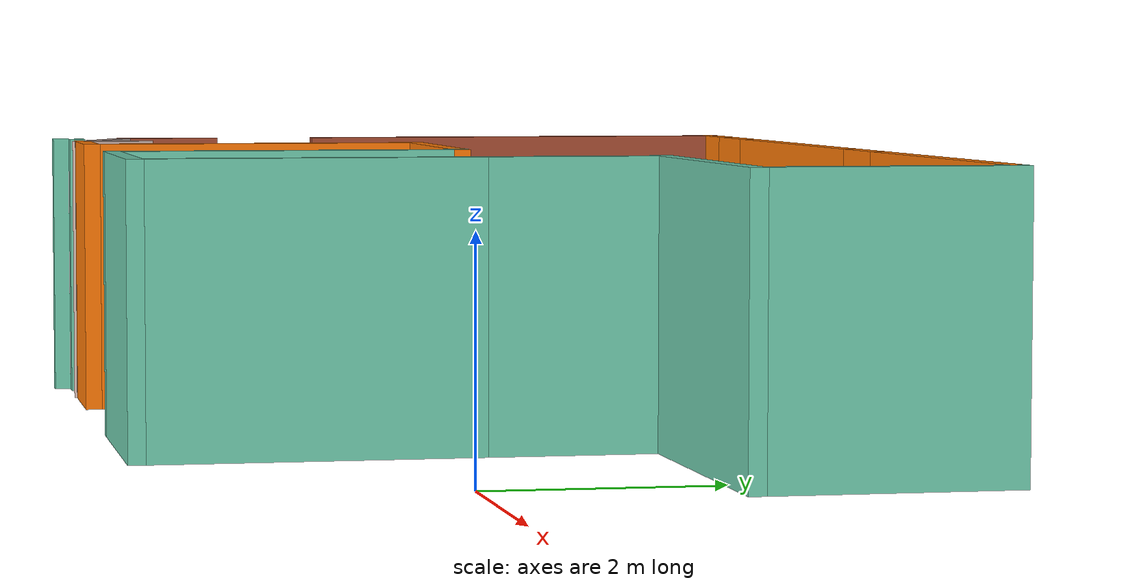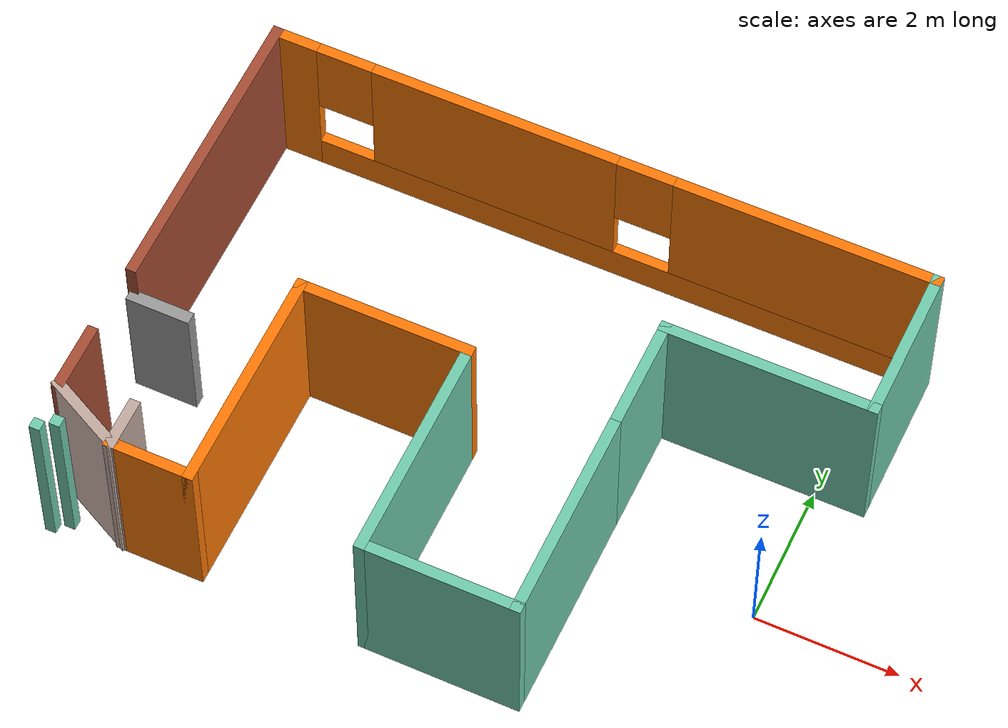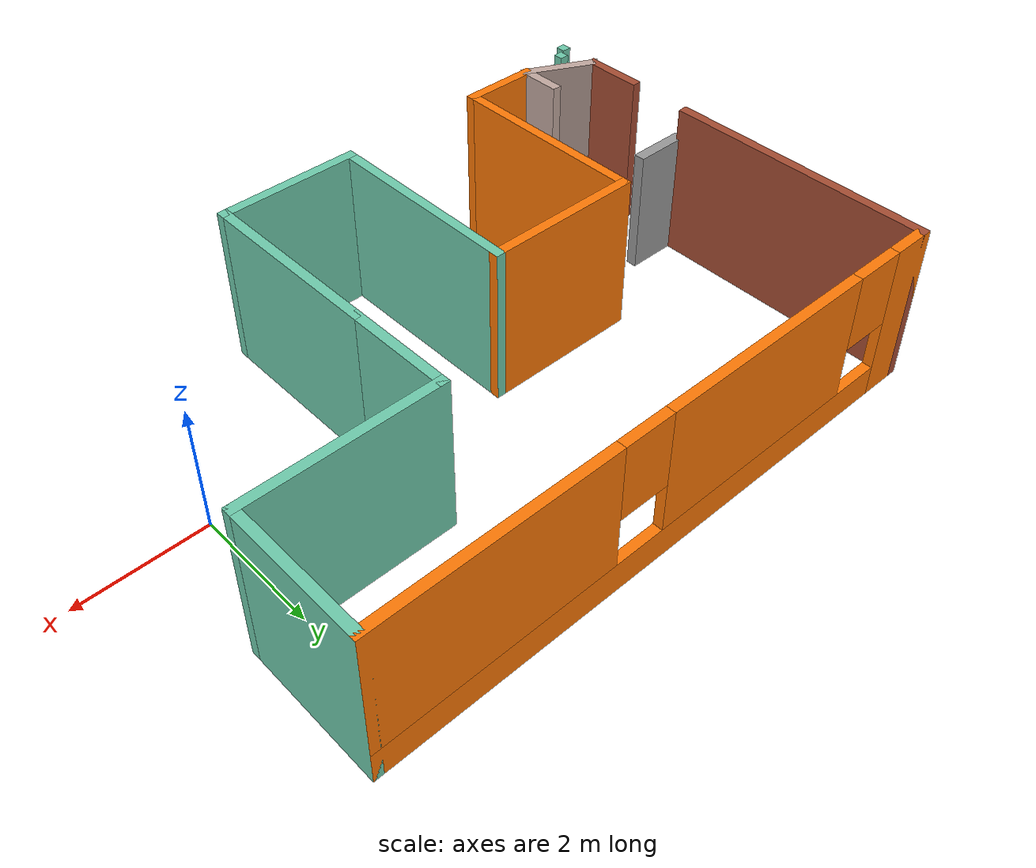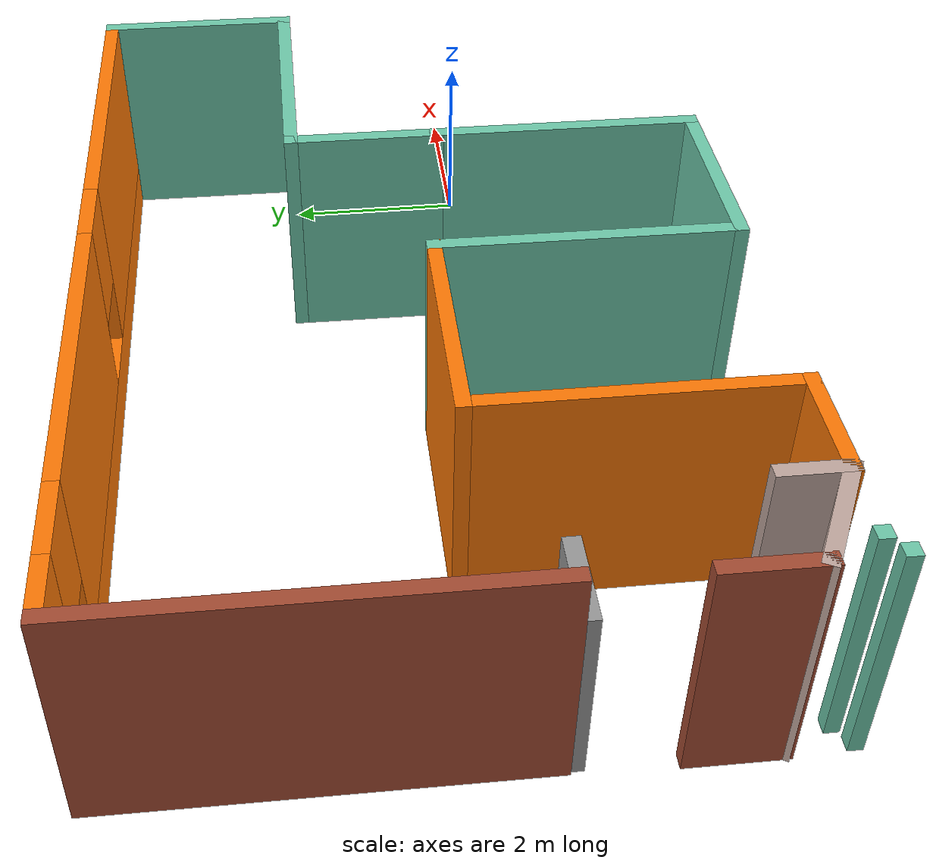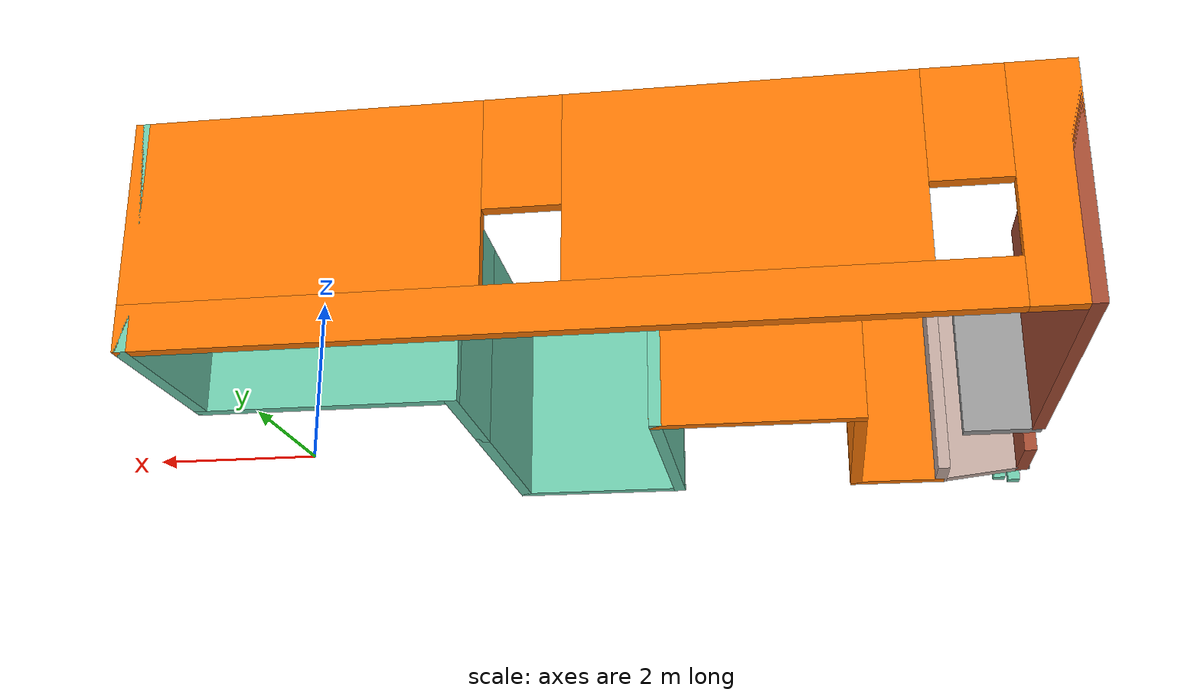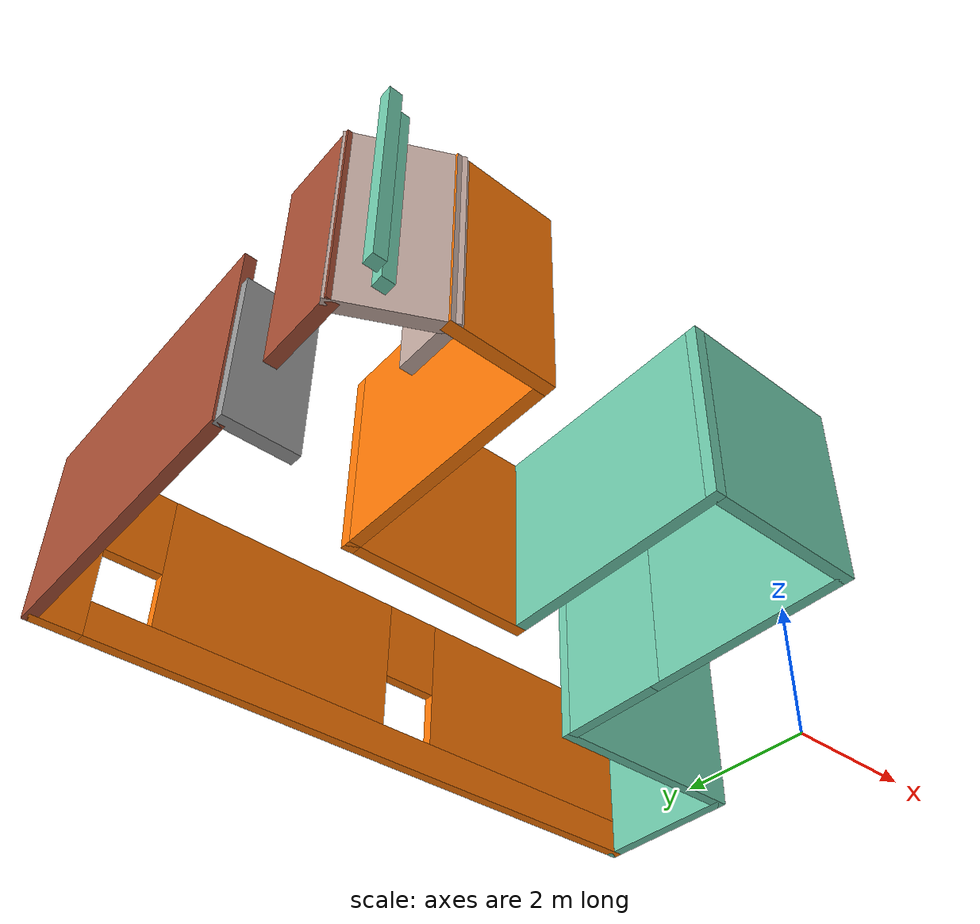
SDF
<?xml version='1.0'?>
<sdf version='1.6'>
  <model name='building'>
    <pose frame=''>-4.07015 0.79187 0 0 -0 0</pose>
    <link name='Door_0'>
      <collision name='Door_0_Collision'>
        <geometry>
          <box>
            <size>0.9 0.17 2</size>
          </box>
        </geometry>
        <pose frame=''>0 0 1 0 -0 0</pose>
      </collision>
      <visual name='Door_0_Visual'>
        <pose frame=''>0 0 1 0 -0 0</pose>
        <geometry>
          <box>
            <size>0.9 0.17 2</size>
          </box>
        </geometry>
        <material>
          <script>
            <uri>file://media/materials/scripts/gazebo.material</uri>
            <name>Gazebo/Grey</name>
          </script>
        </material>
      </visual>
      <pose frame=''>-4.24162 -0.866195 0 0 -0 0</pose>
    </link>
    <link name='Wall_10'>
      <collision name='Wall_10_Collision'>
        <geometry>
          <box>
            <size>3.25 0.15 2.5</size>
          </box>
        </geometry>
        <pose frame=''>0 0 1.25 0 -0 0</pose>
      </collision>
      <visual name='Wall_10_Visual'>
        <pose frame=''>0 0 1.25 0 -0 0</pose>
        <geometry>
          <box>
            <size>3.25 0.15 2.5</size>
          </box>
        </geometry>
        <material>
          <script>
            <uri>file://media/materials/scripts/gazebo.material</uri>
            <name>Gazebo/Grey</name>
          </script>
          <ambient>0.435294 0.796078 0.67451 1</ambient>
        </material>
        <meta>
          <layer>0</layer>
        </meta>
      </visual>
      <pose frame=''>-0.245843 -1.65 0 0 -0 1.5708</pose>
    </link>
    <link name='Wall_11'>
      <collision name='Wall_11_Collision'>
        <geometry>
          <box>
            <size>2.5 0.15 2.5</size>
          </box>
        </geometry>
        <pose frame=''>0 0 1.25 0 -0 0</pose>
      </collision>
      <visual name='Wall_11_Visual'>
        <pose frame=''>0 0 1.25 0 -0 0</pose>
        <geometry>
          <box>
            <size>2.5 0.15 2.5</size>
          </box>
        </geometry>
        <material>
          <script>
            <uri>file://media/materials/scripts/gazebo.material</uri>
            <name>Gazebo/Grey</name>
          </script>
          <ambient>0.996078 0.47451 0.0196078 1</ambient>
        </material>
        <meta>
          <layer>0</layer>
        </meta>
      </visual>
      <pose frame=''>-1.42084 -0.1 0 0 -0 3.14159</pose>
    </link>
    <link name='Wall_12'>
      <collision name='Wall_12_Collision'>
        <geometry>
          <box>
            <size>3.25 0.15 2.5</size>
          </box>
        </geometry>
        <pose frame=''>0 0 1.25 0 -0 0</pose>
      </collision>
      <visual name='Wall_12_Visual'>
        <pose frame=''>0 0 1.25 0 -0 0</pose>
        <geometry>
          <box>
            <size>3.25 0.15 2.5</size>
          </box>
        </geometry>
        <material>
          <script>
            <uri>file://media/materials/scripts/gazebo.material</uri>
            <name>Gazebo/Grey</name>
          </script>
          <ambient>0.996078 0.47451 0.0196078 1</ambient>
        </material>
        <meta>
          <layer>0</layer>
        </meta>
      </visual>
      <pose frame=''>-2.59584 -1.65 0 0 0 -1.5708</pose>
    </link>
    <link name='Wall_14'>
      <collision name='Wall_14_Collision'>
        <geometry>
          <box>
            <size>0.15 0.15 2.5</size>
          </box>
        </geometry>
        <pose frame=''>0 0 1.25 0 -0 0</pose>
      </collision>
      <visual name='Wall_14_Visual'>
        <pose frame=''>0 0 1.25 0 -0 0</pose>
        <geometry>
          <box>
            <size>0.15 0.15 2.5</size>
          </box>
        </geometry>
        <material>
          <script>
            <uri>file://media/materials/scripts/gazebo.material</uri>
            <name>Gazebo/Grey</name>
          </script>
          <ambient>0.435294 0.796078 0.67451 1</ambient>
        </material>
        <meta>
          <layer>0</layer>
        </meta>
      </visual>
      <pose frame=''>-4.44584 -3.2 0 0 -0 0</pose>
    </link>
    <link name='Wall_19'>
      <collision name='Wall_19_Collision'>
        <geometry>
          <box>
            <size>0.15 0.15 2.5</size>
          </box>
        </geometry>
        <pose frame=''>0 0 1.25 0 -0 0</pose>
      </collision>
      <visual name='Wall_19_Visual'>
        <pose frame=''>0 0 1.25 0 -0 0</pose>
        <geometry>
          <box>
            <size>0.15 0.15 2.5</size>
          </box>
        </geometry>
        <material>
          <script>
            <uri>file://media/materials/scripts/gazebo.material</uri>
            <name>Gazebo/Grey</name>
          </script>
          <ambient>0.435294 0.796078 0.67451 1</ambient>
        </material>
        <meta>
          <layer>0</layer>
        </meta>
      </visual>
      <pose frame=''>-4.64584 -3.35 0 0 -0 0</pose>
    </link>
    <link name='Wall_3'>
      <collision name='Wall_3_Collision'>
        <geometry>
          <box>
            <size>4.25 0.15 2.5</size>
          </box>
        </geometry>
        <pose frame=''>0 0 1.25 0 -0 0</pose>
      </collision>
      <visual name='Wall_3_Visual'>
        <pose frame=''>0 0 1.25 0 -0 0</pose>
        <geometry>
          <box>
            <size>4.25 0.15 2.5</size>
          </box>
        </geometry>
        <material>
          <script>
            <uri>file://media/materials/scripts/gazebo.material</uri>
            <name>Gazebo/Bricks</name>
          </script>
          <ambient>0.996078 0.47451 0.0196078 1</ambient>
        </material>
        <meta>
          <layer>0</layer>
        </meta>
      </visual>
      <pose frame=''>-4.64584 1.3 0 0 -0 1.5708</pose>
    </link>
    <link name='Wall_4'>
      <pose frame=''>0.029157 3.35 0 0 -0 0</pose>
      <visual name='Wall_4_Visual_0'>
        <pose frame=''>-4.40361 0 1.25 0 -0 0</pose>
        <geometry>
          <box>
            <size>0.692786 0.15 2.5</size>
          </box>
        </geometry>
        <material>
          <script>
            <uri>file://media/materials/scripts/gazebo.material</uri>
            <name>Gazebo/Grey</name>
          </script>
          <ambient>0.996078 0.47451 0.0196078 1</ambient>
        </material>
        <meta>
          <layer>0</layer>
        </meta>
      </visual>
      <collision name='Wall_4_Collision_0'>
        <geometry>
          <box>
            <size>0.692786 0.15 2.5</size>
          </box>
        </geometry>
        <pose frame=''>-4.40361 0 1.25 0 -0 0</pose>
      </collision>
      <visual name='Wall_4_Visual_1'>
        <pose frame=''>0.346393 0 0.25 0 -0 0</pose>
        <geometry>
          <box>
            <size>8.80721 0.15 0.5</size>
          </box>
        </geometry>
        <material>
          <script>
            <uri>file://media/materials/scripts/gazebo.material</uri>
            <name>Gazebo/Grey</name>
          </script>
          <ambient>0.996078 0.47451 0.0196078 1</ambient>
        </material>
        <meta>
          <layer>0</layer>
        </meta>
      </visual>
      <collision name='Wall_4_Collision_1'>
        <geometry>
          <box>
            <size>8.80721 0.15 0.5</size>
          </box>
        </geometry>
        <pose frame=''>0.346393 0 0.25 0 -0 0</pose>
      </collision>
      <visual name='Wall_4_Visual_2'>
        <pose frame=''>-1.5026 0 1.5 0 -0 0</pose>
        <geometry>
          <box>
            <size>3.50923 0.15 2</size>
          </box>
        </geometry>
        <material>
          <script>
            <uri>file://media/materials/scripts/gazebo.material</uri>
            <name>Gazebo/Grey</name>
          </script>
          <ambient>0.996078 0.47451 0.0196078 1</ambient>
        </material>
        <meta>
          <layer>0</layer>
        </meta>
      </visual>
      <collision name='Wall_4_Collision_2'>
        <geometry>
          <box>
            <size>3.50923 0.15 2</size>
          </box>
        </geometry>
        <pose frame=''>-1.5026 0 1.5 0 -0 0</pose>
      </collision>
      <visual name='Wall_4_Visual_3'>
        <pose frame=''>2.90101 0 1.5 0 -0 0</pose>
        <geometry>
          <box>
            <size>3.69798 0.15 2</size>
          </box>
        </geometry>
        <material>
          <script>
            <uri>file://media/materials/scripts/gazebo.material</uri>
            <name>Gazebo/Grey</name>
          </script>
          <ambient>0.996078 0.47451 0.0196078 1</ambient>
        </material>
        <meta>
          <layer>0</layer>
        </meta>
      </visual>
      <collision name='Wall_4_Collision_3'>
        <geometry>
          <box>
            <size>3.69798 0.15 2</size>
          </box>
        </geometry>
        <pose frame=''>2.90101 0 1.5 0 -0 0</pose>
      </collision>
      <visual name='Wall_4_Visual_4'>
        <pose frame=''>-3.65721 0 1.9 0 -0 0</pose>
        <geometry>
          <box>
            <size>0.8 0.15 1.2</size>
          </box>
        </geometry>
        <material>
          <script>
            <uri>file://media/materials/scripts/gazebo.material</uri>
            <name>Gazebo/Grey</name>
          </script>
          <ambient>0.996078 0.47451 0.0196078 1</ambient>
        </material>
        <meta>
          <layer>0</layer>
        </meta>
      </visual>
      <collision name='Wall_4_Collision_4'>
        <geometry>
          <box>
            <size>0.8 0.15 1.2</size>
          </box>
        </geometry>
        <pose frame=''>-3.65721 0 1.9 0 -0 0</pose>
      </collision>
      <visual name='Wall_4_Visual_5'>
        <pose frame=''>0.652018 0 1.9 0 -0 0</pose>
        <geometry>
          <box>
            <size>0.8 0.15 1.2</size>
          </box>
        </geometry>
        <material>
          <script>
            <uri>file://media/materials/scripts/gazebo.material</uri>
            <name>Gazebo/Grey</name>
          </script>
          <ambient>0.996078 0.47451 0.0196078 1</ambient>
        </material>
        <meta>
          <layer>0</layer>
        </meta>
      </visual>
      <collision name='Wall_4_Collision_5'>
        <geometry>
          <box>
            <size>0.8 0.15 1.2</size>
          </box>
        </geometry>
        <pose frame=''>0.652018 0 1.9 0 -0 0</pose>
      </collision>
    </link>
    <link name='Wall_5'>
      <collision name='Wall_5_Collision'>
        <geometry>
          <box>
            <size>2.25 0.15 2.5</size>
          </box>
        </geometry>
        <pose frame=''>0 0 1.25 0 -0 0</pose>
      </collision>
      <visual name='Wall_5_Visual'>
        <pose frame=''>0 0 1.25 0 -0 0</pose>
        <geometry>
          <box>
            <size>2.25 0.15 2.5</size>
          </box>
        </geometry>
        <material>
          <script>
            <uri>file://media/materials/scripts/gazebo.material</uri>
            <name>Gazebo/Grey</name>
          </script>
          <ambient>0.435294 0.796078 0.67451 1</ambient>
        </material>
        <meta>
          <layer>0</layer>
        </meta>
      </visual>
      <pose frame=''>4.70416 2.3 0 0 0 -1.5708</pose>
    </link>
    <link name='Wall_6'>
      <collision name='Wall_6_Collision'>
        <geometry>
          <box>
            <size>3 0.15 2.5</size>
          </box>
        </geometry>
        <pose frame=''>0 0 1.25 0 -0 0</pose>
      </collision>
      <visual name='Wall_6_Visual'>
        <pose frame=''>0 0 1.25 0 -0 0</pose>
        <geometry>
          <box>
            <size>3 0.15 2.5</size>
          </box>
        </geometry>
        <material>
          <script>
            <uri>file://media/materials/scripts/gazebo.material</uri>
            <name>Gazebo/Grey</name>
          </script>
          <ambient>0.435294 0.796078 0.67451 1</ambient>
        </material>
        <meta>
          <layer>0</layer>
        </meta>
      </visual>
      <pose frame=''>3.27916 1.25 0 0 -0 3.14159</pose>
    </link>
    <link name='Wall_7'>
      <collision name='Wall_7_Collision'>
        <geometry>
          <box>
            <size>1.75 0.15 2.5</size>
          </box>
        </geometry>
        <pose frame=''>0 0 1.25 0 -0 0</pose>
      </collision>
      <visual name='Wall_7_Visual'>
        <pose frame=''>0 0 1.25 0 -0 0</pose>
        <geometry>
          <box>
            <size>1.75 0.15 2.5</size>
          </box>
        </geometry>
        <material>
          <script>
            <uri>file://media/materials/scripts/gazebo.material</uri>
            <name>Gazebo/Grey</name>
          </script>
          <ambient>0.435294 0.796078 0.67451 1</ambient>
        </material>
        <meta>
          <layer>0</layer>
        </meta>
      </visual>
      <pose frame=''>1.85416 0.45 0 0 0 -1.5708</pose>
    </link>
    <link name='Wall_8'>
      <collision name='Wall_8_Collision'>
        <geometry>
          <box>
            <size>3 0.15 2.5</size>
          </box>
        </geometry>
        <pose frame=''>0 0 1.25 0 -0 0</pose>
      </collision>
      <visual name='Wall_8_Visual'>
        <pose frame=''>0 0 1.25 0 -0 0</pose>
        <geometry>
          <box>
            <size>3 0.15 2.5</size>
          </box>
        </geometry>
        <material>
          <script>
            <uri>file://media/materials/scripts/gazebo.material</uri>
            <name>Gazebo/Grey</name>
          </script>
          <ambient>0.435294 0.796078 0.67451 1</ambient>
        </material>
        <meta>
          <layer>0</layer>
        </meta>
      </visual>
      <pose frame=''>1.85416 -1.775 0 0 0 -1.5708</pose>
    </link>
    <link name='Wall_9'>
      <collision name='Wall_9_Collision'>
        <geometry>
          <box>
            <size>2.25 0.15 2.5</size>
          </box>
        </geometry>
        <pose frame=''>0 0 1.25 0 -0 0</pose>
      </collision>
      <visual name='Wall_9_Visual'>
        <pose frame=''>0 0 1.25 0 -0 0</pose>
        <geometry>
          <box>
            <size>2.25 0.15 2.5</size>
          </box>
        </geometry>
        <material>
          <script>
            <uri>file://media/materials/scripts/gazebo.material</uri>
            <name>Gazebo/Grey</name>
          </script>
          <ambient>0.435294 0.796078 0.67451 1</ambient>
        </material>
        <meta>
          <layer>0</layer>
        </meta>
      </visual>
      <pose frame=''>0.804156 -3.2 0 0 -0 3.14159</pose>
    </link>
    <link name='Wall_90'>
      <collision name='Wall_90_Collision'>
        <geometry>
          <box>
            <size>1.25 0.15 2.5</size>
          </box>
        </geometry>
        <pose frame=''>0 0 1.25 0 -0 0</pose>
      </collision>
      <visual name='Wall_90_Visual'>
        <pose frame=''>0 0 1.25 0 -0 0</pose>
        <geometry>
          <box>
            <size>1.25 0.15 2.5</size>
          </box>
        </geometry>
        <material>
          <script>
            <uri>file://media/materials/scripts/gazebo.material</uri>
            <name>Gazebo/Grey</name>
          </script>
          <ambient>0.996078 0.47451 0.0196078 1</ambient>
        </material>
        <meta>
          <layer>0</layer>
        </meta>
      </visual>
      <pose frame=''>-3.14584 -3.2 0 0 -0 3.14159</pose>
    </link>
    <link name='Wall_91'>
      <collision name='Wall_91_Collision'>
        <geometry>
          <box>
            <size>0.75 0.15 2.5</size>
          </box>
        </geometry>
        <pose frame=''>0 0 1.25 0 -0 0</pose>
      </collision>
      <visual name='Wall_91_Visual'>
        <pose frame=''>0 0 1.25 0 -0 0</pose>
        <geometry>
          <box>
            <size>0.75 0.15 2.5</size>
          </box>
        </geometry>
        <material>
          <script>
            <uri>file://media/materials/scripts/gazebo.material</uri>
            <name>Gazebo/Grey</name>
          </script>
          <ambient>0.760784 0.662745 0.627451 1</ambient>
        </material>
        <meta>
          <layer>0</layer>
        </meta>
      </visual>
      <pose frame=''>-3.69584 -2.9 0 0 -0 1.5708</pose>
    </link>
    <link name='Wall_93'>
      <collision name='Wall_93_Collision'>
        <geometry>
          <box>
            <size>1 0.15 2.5</size>
          </box>
        </geometry>
        <pose frame=''>0 0 1.25 0 -0 0</pose>
      </collision>
      <visual name='Wall_93_Visual'>
        <pose frame=''>0 0 1.25 0 -0 0</pose>
        <geometry>
          <box>
            <size>1 0.15 2.5</size>
          </box>
        </geometry>
        <material>
          <script>
            <uri>file://media/materials/scripts/gazebo.material</uri>
            <name>Gazebo/Bricks</name>
          </script>
          <ambient>0.760784 0.662745 0.627451 1</ambient>
        </material>
        <meta>
          <layer>0</layer>
        </meta>
      </visual>
      <pose frame=''>-4.67842 -2.27948 0 0 0 -1.5708</pose>
    </link>
    <link name='Wall_94'>
      <collision name='Wall_94_Collision'>
        <geometry>
          <box>
            <size>1.25045 0.15 2.5</size>
          </box>
        </geometry>
        <pose frame=''>0 0 1.25 0 -0 0</pose>
      </collision>
      <visual name='Wall_94_Visual'>
        <pose frame=''>0 0 1.25 0 -0 0</pose>
        <geometry>
          <box>
            <size>1.25045 0.15 2.5</size>
          </box>
        </geometry>
        <material>
          <script>
            <uri>file://media/materials/scripts/gazebo.material</uri>
            <name>Gazebo/Grey</name>
          </script>
          <ambient>0.760784 0.662745 0.627451 1</ambient>
        </material>
        <meta>
          <layer>0</layer>
        </meta>
      </visual>
      <pose frame=''>-4.18713 -2.95224 0 0 0 -0.467092</pose>
    </link>
    <static>1</static>
  </model>
</sdf>
